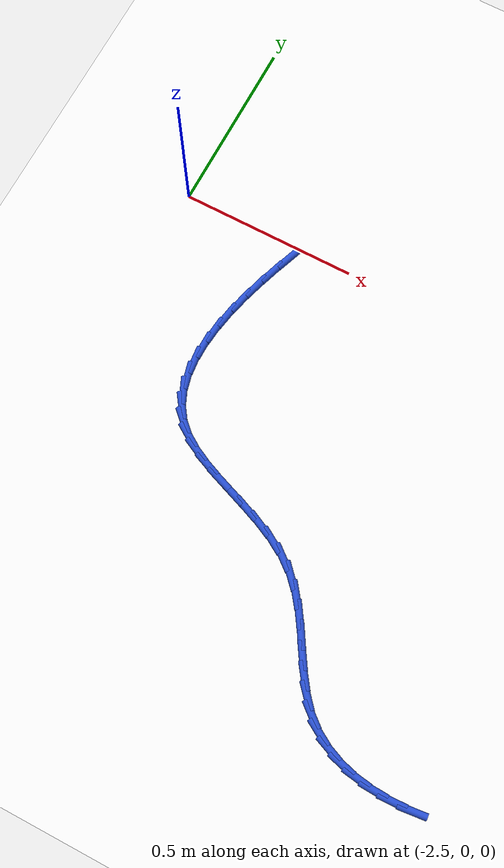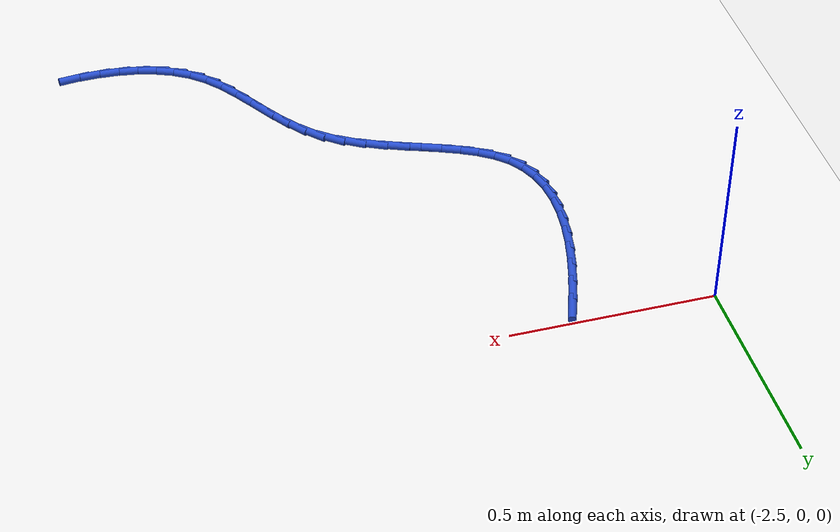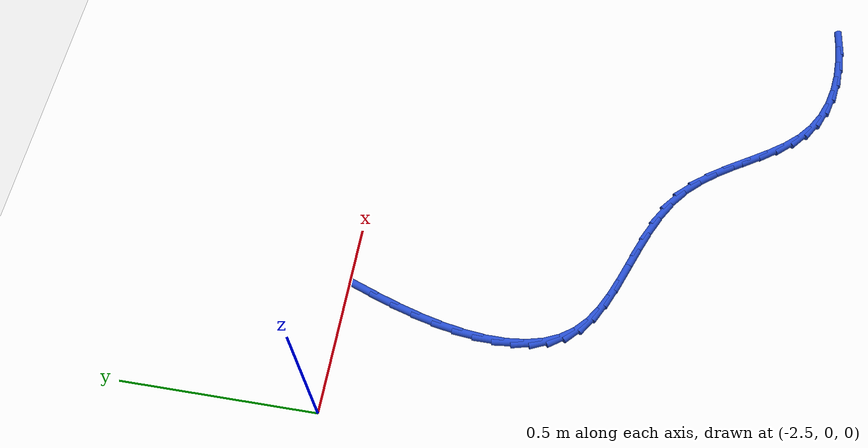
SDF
<sdf version="1.6">
 <world name="default">
  <model name="ground_plane">
   <static>1</static>
   <link name="link">
    <collision name="collision">
     <geometry><plane><normal>0 0 1</normal><size>100 100</size></plane></geometry>
     <surface><friction><ode><mu>100</mu><mu2>50</mu2></ode></friction></surface>
    </collision>
    <visual name="visual">
     <cast_shadows>0</cast_shadows>
     <geometry><plane><normal>0 0 1</normal><size>100 100</size></plane></geometry>
     <material>
      <script><uri>file://media/materials/scripts/gazebo.material</uri><name>Gazebo/WhiteGlow</name></script>
     </material>
    </visual>
   </link>
  </model>
  <model name="line">
   <link name="link_70">
    <pose>-2.1644145644903503 -0.04088291315720414 0.01 0 1.57 1.227483008378057</pose>
    <collision name="collision">
     <geometry><cylinder><radius>0.01</radius><length>0.08</length></cylinder></geometry>
    </collision>
    <visual name="visual">
     <material>
      <script><name>Gazebo/Blue</name><uri>file://media/materials/scripts/gazebo.material</uri></script>
     </material>
     <geometry><cylinder><radius>0.01</radius><length>0.08</length></cylinder></geometry>
    </visual>
   </link>
   <link name="link_71">
    <pose>-2.1849767820986874 -0.09840456480494618 0.01 0 1.57 1.2591002900541675</pose>
    <collision name="collision">
     <geometry><cylinder><radius>0.01</radius><length>0.08</length></cylinder></geometry>
    </collision>
    <visual name="visual">
     <material>
      <script><name>Gazebo/Blue</name><uri>file://media/materials/scripts/gazebo.material</uri></script>
     </material>
     <geometry><cylinder><radius>0.01</radius><length>0.08</length></cylinder></geometry>
    </visual>
   </link>
   <link name="link_72">
    <pose>-2.2034575962603085 -0.15576302240184642 0.01 0 1.57 1.2979887422009302</pose>
    <collision name="collision">
     <geometry><cylinder><radius>0.01</radius><length>0.08</length></cylinder></geometry>
    </collision>
    <visual name="visual">
     <material>
      <script><name>Gazebo/Blue</name><uri>file://media/materials/scripts/gazebo.material</uri></script>
     </material>
     <geometry><cylinder><radius>0.01</radius><length>0.08</length></cylinder></geometry>
    </visual>
   </link>
   <link name="link_73">
    <pose>-2.2193258739628656 -0.21247937241147932 0.01 0 1.57 1.345792793061231</pose>
    <collision name="collision">
     <geometry><cylinder><radius>0.01</radius><length>0.08</length></cylinder></geometry>
    </collision>
    <visual name="visual">
     <material>
      <script><name>Gazebo/Blue</name><uri>file://media/materials/scripts/gazebo.material</uri></script>
     </material>
     <geometry><cylinder><radius>0.01</radius><length>0.08</length></cylinder></geometry>
    </visual>
   </link>
   <link name="link_74">
    <pose>-2.2320504821940093 -0.2680747012974172 0.01 0 1.57 1.4047364782906486</pose>
    <collision name="collision">
     <geometry><cylinder><radius>0.01</radius><length>0.08</length></cylinder></geometry>
    </collision>
    <visual name="visual">
     <material>
      <script><name>Gazebo/Blue</name><uri>file://media/materials/scripts/gazebo.material</uri></script>
     </material>
     <geometry><cylinder><radius>0.01</radius><length>0.08</length></cylinder></geometry>
    </visual>
   </link>
   <link name="link_75">
    <pose>-2.2411002879413933 -0.3220700955232346 0.01 0 1.57 1.4777645646208695</pose>
    <collision name="collision">
     <geometry><cylinder><radius>0.01</radius><length>0.08</length></cylinder></geometry>
    </collision>
    <visual name="visual">
     <material>
      <script><name>Gazebo/Blue</name><uri>file://media/materials/scripts/gazebo.material</uri></script>
     </material>
     <geometry><cylinder><radius>0.01</radius><length>0.08</length></cylinder></geometry>
    </visual>
   </link>
   <link name="link_76">
    <pose>-2.24594415819267 -0.3739866415525056 0.01 0 1.57 1.5686325462710848</pose>
    <collision name="collision">
     <geometry><cylinder><radius>0.01</radius><length>0.08</length></cylinder></geometry>
    </collision>
    <visual name="visual">
     <material>
      <script><name>Gazebo/Blue</name><uri>file://media/materials/scripts/gazebo.material</uri></script>
     </material>
     <geometry><cylinder><radius>0.01</radius><length>0.08</length></cylinder></geometry>
    </visual>
   </link>
   <link name="link_77">
    <pose>-2.246050959935489 -0.4233454258488037 0.01 0 1.57 -1.4598299342875412</pose>
    <collision name="collision">
     <geometry><cylinder><radius>0.01</radius><length>0.08</length></cylinder></geometry>
    </collision>
    <visual name="visual">
     <material>
      <script><name>Gazebo/Blue</name><uri>file://media/materials/scripts/gazebo.material</uri></script>
     </material>
     <geometry><cylinder><radius>0.01</radius><length>0.08</length></cylinder></geometry>
    </visual>
   </link>
   <link name="link_78">
    <pose>-2.240889560157505 -0.4696675348757037 0.01 0 1.57 -1.320128965271266</pose>
    <collision name="collision">
     <geometry><cylinder><radius>0.01</radius><length>0.08</length></cylinder></geometry>
    </collision>
    <visual name="visual">
     <material>
      <script><name>Gazebo/Blue</name><uri>file://media/materials/scripts/gazebo.material</uri></script>
     </material>
     <geometry><cylinder><radius>0.01</radius><length>0.08</length></cylinder></geometry>
    </visual>
   </link>
   <link name="link_79">
    <pose>-2.229928825846369 -0.5124740550967779 0.01 0 1.57 -1.1516812703968418</pose>
    <collision name="collision">
     <geometry><cylinder><radius>0.01</radius><length>0.08</length></cylinder></geometry>
    </collision>
    <visual name="visual">
     <material>
      <script><name>Gazebo/Blue</name><uri>file://media/materials/scripts/gazebo.material</uri></script>
     </material>
     <geometry><cylinder><radius>0.01</radius><length>0.08</length></cylinder></geometry>
    </visual>
   </link>
   <link name="link_80">
    <pose>-2.2126376239897336 -0.5512860729756008 0.01 0 1.57 -0.957811028932927</pose>
    <collision name="collision">
     <geometry><cylinder><radius>0.01</radius><length>0.08</length></cylinder></geometry>
    </collision>
    <visual name="visual">
     <material>
      <script><name>Gazebo/Blue</name><uri>file://media/materials/scripts/gazebo.material</uri></script>
     </material>
     <geometry><cylinder><radius>0.01</radius><length>0.08</length></cylinder></geometry>
    </visual>
   </link>
   <link name="link_81">
    <pose>-2.188484821575251 -0.5856246749757466 0.01 0 1.57 -0.7518349755916791</pose>
    <collision name="collision">
     <geometry><cylinder><radius>0.01</radius><length>0.08</length></cylinder></geometry>
    </collision>
    <visual name="visual">
     <material>
      <script><name>Gazebo/Blue</name><uri>file://media/materials/scripts/gazebo.material</uri></script>
     </material>
     <geometry><cylinder><radius>0.01</radius><length>0.08</length></cylinder></geometry>
    </visual>
   </link>
   <link name="link_82">
    <pose>-2.15700063346347 -0.6150633301111116 0.01 0 1.57 -0.5787181415051206</pose>
    <collision name="collision">
     <geometry><cylinder><radius>0.01</radius><length>0.08</length></cylinder></geometry>
    </collision>
    <visual name="visual">
     <material>
      <script><name>Gazebo/Blue</name><uri>file://media/materials/scripts/gazebo.material</uri></script>
     </material>
     <geometry><cylinder><radius>0.01</radius><length>0.08</length></cylinder></geometry>
    </visual>
   </link>
   <link name="link_83">
    <pose>-2.1187466158421793 -0.6400561294354685 0.01 0 1.57 -0.46234639553732637</pose>
    <collision name="collision">
     <geometry><cylinder><radius>0.01</radius><length>0.08</length></cylinder></geometry>
    </collision>
    <visual name="visual">
     <material>
      <script><name>Gazebo/Blue</name><uri>file://media/materials/scripts/gazebo.material</uri></script>
     </material>
     <geometry><cylinder><radius>0.01</radius><length>0.08</length></cylinder></geometry>
    </visual>
   </link>
   <link name="link_84">
    <pose>-2.075140565743403 -0.6617882745854456 0.01 0 1.57 -0.392658925227097</pose>
    <collision name="collision">
     <geometry><cylinder><radius>0.01</radius><length>0.08</length></cylinder></geometry>
    </collision>
    <visual name="visual">
     <material>
      <script><name>Gazebo/Blue</name><uri>file://media/materials/scripts/gazebo.material</uri></script>
     </material>
     <geometry><cylinder><radius>0.01</radius><length>0.08</length></cylinder></geometry>
    </visual>
   </link>
   <link name="link_85">
    <pose>-2.0276262274811803 -0.6814671225673959 0.01 0 1.57 -0.36036297400463885</pose>
    <collision name="collision">
     <geometry><cylinder><radius>0.01</radius><length>0.08</length></cylinder></geometry>
    </collision>
    <visual name="visual">
     <material>
      <script><name>Gazebo/Blue</name><uri>file://media/materials/scripts/gazebo.material</uri></script>
     </material>
     <geometry><cylinder><radius>0.01</radius><length>0.08</length></cylinder></geometry>
    </visual>
   </link>
   <link name="link_86">
    <pose>-1.9776473453695507 -0.7003000303876719 0.01 0 1.57 -0.3599639165553105</pose>
    <collision name="collision">
     <geometry><cylinder><radius>0.01</radius><length>0.08</length></cylinder></geometry>
    </collision>
    <visual name="visual">
     <material>
      <script><name>Gazebo/Blue</name><uri>file://media/materials/scripts/gazebo.material</uri></script>
     </material>
     <geometry><cylinder><radius>0.01</radius><length>0.08</length></cylinder></geometry>
    </visual>
   </link>
   <link name="link_87">
    <pose>-1.9266476637225527 -0.7194943550526262 0.01 0 1.57 -0.3895480108015263</pose>
    <collision name="collision">
     <geometry><cylinder><radius>0.01</radius><length>0.08</length></cylinder></geometry>
    </collision>
    <visual name="visual">
     <material>
      <script><name>Gazebo/Blue</name><uri>file://media/materials/scripts/gazebo.material</uri></script>
     </material>
     <geometry><cylinder><radius>0.01</radius><length>0.08</length></cylinder></geometry>
    </visual>
   </link>
   <link name="link_88">
    <pose>-1.8760709268542262 -0.7402574535686107 0.01 0 1.57 -0.45015968579254567</pose>
    <collision name="collision">
     <geometry><cylinder><radius>0.01</radius><length>0.08</length></cylinder></geometry>
    </collision>
    <visual name="visual">
     <material>
      <script><name>Gazebo/Blue</name><uri>file://media/materials/scripts/gazebo.material</uri></script>
     </material>
     <geometry><cylinder><radius>0.01</radius><length>0.08</length></cylinder></geometry>
    </visual>
   </link>
   <link name="link_89">
    <pose>-1.8273608790786104 -0.7637966829419788 0.01 0 1.57 -0.5449895506253034</pose>
    <collision name="collision">
     <geometry><cylinder><radius>0.01</radius><length>0.08</length></cylinder></geometry>
    </collision>
    <visual name="visual">
     <material>
      <script><name>Gazebo/Blue</name><uri>file://media/materials/scripts/gazebo.material</uri></script>
     </material>
     <geometry><cylinder><radius>0.01</radius><length>0.08</length></cylinder></geometry>
    </visual>
   </link>
   <link name="link_90">
    <pose>-1.7819612647097451 -0.7913194001790825 0.01 0 1.57 -0.6773271620601251</pose>
    <collision name="collision">
     <geometry><cylinder><radius>0.01</radius><length>0.08</length></cylinder></geometry>
    </collision>
    <visual name="visual">
     <material>
      <script><name>Gazebo/Blue</name><uri>file://media/materials/scripts/gazebo.material</uri></script>
     </material>
     <geometry><cylinder><radius>0.01</radius><length>0.08</length></cylinder></geometry>
    </visual>
   </link>
   <link name="link_91">
    <pose>-1.7413024092703084 -0.8240192929434369 0.01 0 1.57 -0.8204839359426409</pose>
    <collision name="collision">
     <geometry><cylinder><radius>0.01</radius><length>0.08</length></cylinder></geometry>
    </collision>
    <visual name="visual">
     <material>
      <script><name>Gazebo/Blue</name><uri>file://media/materials/scripts/gazebo.material</uri></script>
     </material>
     <geometry><cylinder><radius>0.01</radius><length>0.08</length></cylinder></geometry>
    </visual>
   </link>
   <link name="link_92">
    <pose>-1.7058230369409482 -0.8620799326861653 0.01 0 1.57 -0.9261216836789083</pose>
    <collision name="collision">
     <geometry><cylinder><radius>0.01</radius><length>0.08</length></cylinder></geometry>
    </collision>
    <visual name="visual">
     <material>
      <script><name>Gazebo/Blue</name><uri>file://media/materials/scripts/gazebo.material</uri></script>
     </material>
     <geometry><cylinder><radius>0.01</radius><length>0.08</length></cylinder></geometry>
    </visual>
   </link>
   <link name="link_93">
    <pose>-1.6743068379960682 -0.903998954676294 0.01 0 1.57 -0.990420400440186</pose>
    <collision name="collision">
     <geometry><cylinder><radius>0.01</radius><length>0.08</length></cylinder></geometry>
    </collision>
    <visual name="visual">
     <material>
      <script><name>Gazebo/Blue</name><uri>file://media/materials/scripts/gazebo.material</uri></script>
     </material>
     <geometry><cylinder><radius>0.01</radius><length>0.08</length></cylinder></geometry>
    </visual>
   </link>
   <link name="link_94">
    <pose>-1.6453803827306548 -0.9481139405082799 0.01 0 1.57 -1.0153468967460908</pose>
    <collision name="collision">
     <geometry><cylinder><radius>0.01</radius><length>0.08</length></cylinder></geometry>
    </collision>
    <visual name="visual">
     <material>
      <script><name>Gazebo/Blue</name><uri>file://media/materials/scripts/gazebo.material</uri></script>
     </material>
     <geometry><cylinder><radius>0.01</radius><length>0.08</length></cylinder></geometry>
    </visual>
   </link>
   <link name="link_95">
    <pose>-1.6176702414396937 -0.9927624717765797 0.01 0 1.57 -1.0012439411554195</pose>
    <collision name="collision">
     <geometry><cylinder><radius>0.01</radius><length>0.08</length></cylinder></geometry>
    </collision>
    <visual name="visual">
     <material>
      <script><name>Gazebo/Blue</name><uri>file://media/materials/scripts/gazebo.material</uri></script>
     </material>
     <geometry><cylinder><radius>0.01</radius><length>0.08</length></cylinder></geometry>
    </visual>
   </link>
   <link name="link_96">
    <pose>-1.5898029844181714 -1.0362821300756482 0.01 0 1.57 -0.945587741990365</pose>
    <collision name="collision">
     <geometry><cylinder><radius>0.01</radius><length>0.08</length></cylinder></geometry>
    </collision>
    <visual name="visual">
     <material>
      <script><name>Gazebo/Blue</name><uri>file://media/materials/scripts/gazebo.material</uri></script>
     </material>
     <geometry><cylinder><radius>0.01</radius><length>0.08</length></cylinder></geometry>
    </visual>
   </link>
   <link name="link_97">
    <pose>-1.5604051819610743 -1.0770104969999432 0.01 0 1.57 -0.8432670765760177</pose>
    <collision name="collision">
     <geometry><cylinder><radius>0.01</radius><length>0.08</length></cylinder></geometry>
    </collision>
    <visual name="visual">
     <material>
      <script><name>Gazebo/Blue</name><uri>file://media/materials/scripts/gazebo.material</uri></script>
     </material>
     <geometry><cylinder><radius>0.01</radius><length>0.08</length></cylinder></geometry>
    </visual>
   </link>
   <link name="link_98">
    <pose>-1.5281034043633874 -1.1132851541439204 0.01 0 1.57 -0.6932301706674983</pose>
    <collision name="collision">
     <geometry><cylinder><radius>0.01</radius><length>0.08</length></cylinder></geometry>
    </collision>
    <visual name="visual">
     <material>
      <script><name>Gazebo/Blue</name><uri>file://media/materials/scripts/gazebo.material</uri></script>
     </material>
     <geometry><cylinder><radius>0.01</radius><length>0.08</length></cylinder></geometry>
    </visual>
   </link>
   <link name="link_99">
    <pose>-1.491645228490839 -1.143573918979116 0.01 0 1.57 -0.5324140017348398</pose>
    <collision name="collision">
     <geometry><cylinder><radius>0.01</radius><length>0.08</length></cylinder></geometry>
    </collision>
    <visual name="visual">
     <material>
      <script><name>Gazebo/Blue</name><uri>file://media/materials/scripts/gazebo.material</uri></script>
     </material>
     <geometry><cylinder><radius>0.01</radius><length>0.08</length></cylinder></geometry>
    </visual>
   </link>
   <link name="link_100">
    <pose>-1.4509165831704043 -1.1675697843141661 0.01 0 1.57 -0.3857718020279022</pose>
    <collision name="collision">
     <geometry><cylinder><radius>0.01</radius><length>0.08</length></cylinder></geometry>
    </collision>
    <visual name="visual">
     <material>
      <script><name>Gazebo/Blue</name><uri>file://media/materials/scripts/gazebo.material</uri></script>
     </material>
     <geometry><cylinder><radius>0.01</radius><length>0.08</length></cylinder></geometry>
    </visual>
   </link>
   <link name="link_101">
    <pose>-1.406427689856945 -1.1856376510817772 0.01 0 1.57 -0.2563533420304747</pose>
    <collision name="collision">
     <geometry><cylinder><radius>0.01</radius><length>0.08</length></cylinder></geometry>
    </collision>
    <visual name="visual">
     <material>
      <script><name>Gazebo/Blue</name><uri>file://media/materials/scripts/gazebo.material</uri></script>
     </material>
     <geometry><cylinder><radius>0.01</radius><length>0.08</length></cylinder></geometry>
    </visual>
   </link>
   <link name="link_102">
    <pose>-1.3586951840576695 -1.198149323473943 0.01 0 1.57 -0.1442032696272827</pose>
    <collision name="collision">
     <geometry><cylinder><radius>0.01</radius><length>0.08</length></cylinder></geometry>
    </collision>
    <visual name="visual">
     <material>
      <script><name>Gazebo/Blue</name><uri>file://media/materials/scripts/gazebo.material</uri></script>
     </material>
     <geometry><cylinder><radius>0.01</radius><length>0.08</length></cylinder></geometry>
    </visual>
   </link>
   <link name="link_103">
    <pose>-1.3082357012797876 -1.2054766056826591 0.01 0 1.57 -0.04770830505452281</pose>
    <collision name="collision">
     <geometry><cylinder><radius>0.01</radius><length>0.08</length></cylinder></geometry>
    </collision>
    <visual name="visual">
     <material>
      <script><name>Gazebo/Blue</name><uri>file://media/materials/scripts/gazebo.material</uri></script>
     </material>
     <geometry><cylinder><radius>0.01</radius><length>0.08</length></cylinder></geometry>
    </visual>
   </link>
   <link name="link_104">
    <pose>-1.2555658770305058 -1.207991301899918 0.01 0 1.57 0.03541492365063902</pose>
    <collision name="collision">
     <geometry><cylinder><radius>0.01</radius><length>0.08</length></cylinder></geometry>
    </collision>
    <visual name="visual">
     <material>
      <script><name>Gazebo/Blue</name><uri>file://media/materials/scripts/gazebo.material</uri></script>
     </material>
     <geometry><cylinder><radius>0.01</radius><length>0.08</length></cylinder></geometry>
    </visual>
   </link>
   <link name="link_105">
    <pose>-1.2012023468170359 -1.2060652163177146 0.01 0 1.57 0.1075238931661035</pose>
    <collision name="collision">
     <geometry><cylinder><radius>0.01</radius><length>0.08</length></cylinder></geometry>
    </collision>
    <visual name="visual">
     <material>
      <script><name>Gazebo/Blue</name><uri>file://media/materials/scripts/gazebo.material</uri></script>
     </material>
     <geometry><cylinder><radius>0.01</radius><length>0.08</length></cylinder></geometry>
    </visual>
   </link>
  </model>
 </world>
</sdf>
